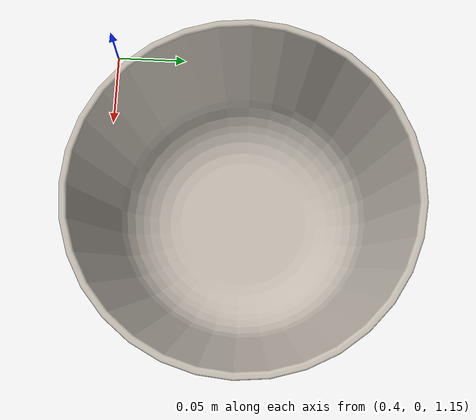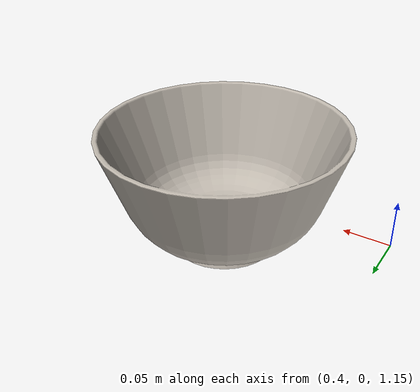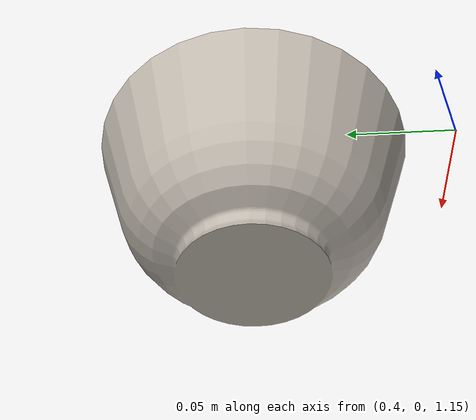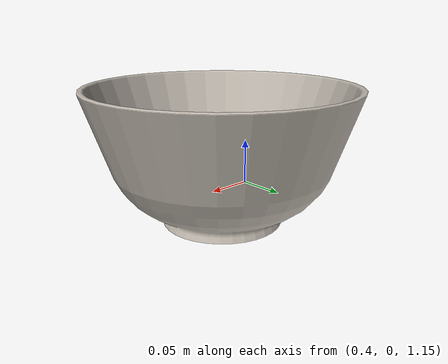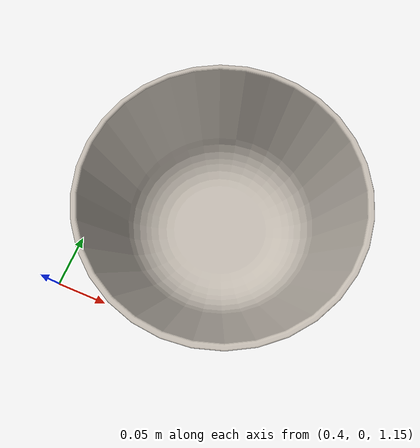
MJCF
<mujoco model="bowl_6">
  <asset>
    <mesh file="../objects/bigym/bowl_12/visual/model_normalized_0.obj" name="bowl_12_model_normalized_0_vis" scale="0.21999999999999994 0.21999999999999994 0.21999999999999994" refquat="1.0 0.0 0.0 0.0"/>
    <mesh file="../objects/bigym/bowl_12/collision/model_normalized_collision_22.obj" name="bowl_12_model_normalized_collision_22._coll" scale="0.21999999999999994 0.21999999999999994 0.21999999999999994" refquat="1.0 0.0 0.0 0.0"/>
    <mesh file="../objects/bigym/bowl_12/collision/model_normalized_collision_23.obj" name="bowl_12_model_normalized_collision_23._coll" scale="0.21999999999999994 0.21999999999999994 0.21999999999999994" refquat="1.0 0.0 0.0 0.0"/>
    <mesh file="../objects/bigym/bowl_12/collision/model_normalized_collision_21.obj" name="bowl_12_model_normalized_collision_21._coll" scale="0.21999999999999994 0.21999999999999994 0.21999999999999994" refquat="1.0 0.0 0.0 0.0"/>
    <mesh file="../objects/bigym/bowl_12/collision/model_normalized_collision_20.obj" name="bowl_12_model_normalized_collision_20._coll" scale="0.21999999999999994 0.21999999999999994 0.21999999999999994" refquat="1.0 0.0 0.0 0.0"/>
    <mesh file="../objects/bigym/bowl_12/collision/model_normalized_collision_24.obj" name="bowl_12_model_normalized_collision_24._coll" scale="0.21999999999999994 0.21999999999999994 0.21999999999999994" refquat="1.0 0.0 0.0 0.0"/>
    <mesh file="../objects/bigym/bowl_12/collision/model_normalized_collision_30.obj" name="bowl_12_model_normalized_collision_30._coll" scale="0.21999999999999994 0.21999999999999994 0.21999999999999994" refquat="1.0 0.0 0.0 0.0"/>
    <mesh file="../objects/bigym/bowl_12/collision/model_normalized_collision_18.obj" name="bowl_12_model_normalized_collision_18._coll" scale="0.21999999999999994 0.21999999999999994 0.21999999999999994" refquat="1.0 0.0 0.0 0.0"/>
    <mesh file="../objects/bigym/bowl_12/collision/model_normalized_collision_19.obj" name="bowl_12_model_normalized_collision_19._coll" scale="0.21999999999999994 0.21999999999999994 0.21999999999999994" refquat="1.0 0.0 0.0 0.0"/>
    <mesh file="../objects/bigym/bowl_12/collision/model_normalized_collision_31.obj" name="bowl_12_model_normalized_collision_31._coll" scale="0.21999999999999994 0.21999999999999994 0.21999999999999994" refquat="1.0 0.0 0.0 0.0"/>
    <mesh file="../objects/bigym/bowl_12/collision/model_normalized_collision_25.obj" name="bowl_12_model_normalized_collision_25._coll" scale="0.21999999999999994 0.21999999999999994 0.21999999999999994" refquat="1.0 0.0 0.0 0.0"/>
    <mesh file="../objects/bigym/bowl_12/collision/model_normalized_collision_27.obj" name="bowl_12_model_normalized_collision_27._coll" scale="0.21999999999999994 0.21999999999999994 0.21999999999999994" refquat="1.0 0.0 0.0 0.0"/>
    <mesh file="../objects/bigym/bowl_12/collision/model_normalized_collision_26.obj" name="bowl_12_model_normalized_collision_26._coll" scale="0.21999999999999994 0.21999999999999994 0.21999999999999994" refquat="1.0 0.0 0.0 0.0"/>
    <mesh file="../objects/bigym/bowl_12/collision/model_normalized_collision_9.obj" name="bowl_12_model_normalized_collision_9._coll" scale="0.21999999999999994 0.21999999999999994 0.21999999999999994" refquat="1.0 0.0 0.0 0.0"/>
    <mesh file="../objects/bigym/bowl_12/collision/model_normalized_collision_8.obj" name="bowl_12_model_normalized_collision_8._coll" scale="0.21999999999999994 0.21999999999999994 0.21999999999999994" refquat="1.0 0.0 0.0 0.0"/>
    <mesh file="../objects/bigym/bowl_12/collision/model_normalized_collision_6.obj" name="bowl_12_model_normalized_collision_6._coll" scale="0.21999999999999994 0.21999999999999994 0.21999999999999994" refquat="1.0 0.0 0.0 0.0"/>
    <mesh file="../objects/bigym/bowl_12/collision/model_normalized_collision_7.obj" name="bowl_12_model_normalized_collision_7._coll" scale="0.21999999999999994 0.21999999999999994 0.21999999999999994" refquat="1.0 0.0 0.0 0.0"/>
    <mesh file="../objects/bigym/bowl_12/collision/model_normalized_collision_5.obj" name="bowl_12_model_normalized_collision_5._coll" scale="0.21999999999999994 0.21999999999999994 0.21999999999999994" refquat="1.0 0.0 0.0 0.0"/>
    <mesh file="../objects/bigym/bowl_12/collision/model_normalized_collision_4.obj" name="bowl_12_model_normalized_collision_4._coll" scale="0.21999999999999994 0.21999999999999994 0.21999999999999994" refquat="1.0 0.0 0.0 0.0"/>
    <mesh file="../objects/bigym/bowl_12/collision/model_normalized_collision_0.obj" name="bowl_12_model_normalized_collision_0._coll" scale="0.21999999999999994 0.21999999999999994 0.21999999999999994" refquat="1.0 0.0 0.0 0.0"/>
    <mesh file="../objects/bigym/bowl_12/collision/model_normalized_collision_1.obj" name="bowl_12_model_normalized_collision_1._coll" scale="0.21999999999999994 0.21999999999999994 0.21999999999999994" refquat="1.0 0.0 0.0 0.0"/>
    <mesh file="../objects/bigym/bowl_12/collision/model_normalized_collision_3.obj" name="bowl_12_model_normalized_collision_3._coll" scale="0.21999999999999994 0.21999999999999994 0.21999999999999994" refquat="1.0 0.0 0.0 0.0"/>
    <mesh file="../objects/bigym/bowl_12/collision/model_normalized_collision_2.obj" name="bowl_12_model_normalized_collision_2._coll" scale="0.21999999999999994 0.21999999999999994 0.21999999999999994" refquat="1.0 0.0 0.0 0.0"/>
    <mesh file="../objects/bigym/bowl_12/collision/model_normalized_collision_17.obj" name="bowl_12_model_normalized_collision_17._coll" scale="0.21999999999999994 0.21999999999999994 0.21999999999999994" refquat="1.0 0.0 0.0 0.0"/>
    <mesh file="../objects/bigym/bowl_12/collision/model_normalized_collision_16.obj" name="bowl_12_model_normalized_collision_16._coll" scale="0.21999999999999994 0.21999999999999994 0.21999999999999994" refquat="1.0 0.0 0.0 0.0"/>
    <mesh file="../objects/bigym/bowl_12/collision/model_normalized_collision_28.obj" name="bowl_12_model_normalized_collision_28._coll" scale="0.21999999999999994 0.21999999999999994 0.21999999999999994" refquat="1.0 0.0 0.0 0.0"/>
    <mesh file="../objects/bigym/bowl_12/collision/model_normalized_collision_14.obj" name="bowl_12_model_normalized_collision_14._coll" scale="0.21999999999999994 0.21999999999999994 0.21999999999999994" refquat="1.0 0.0 0.0 0.0"/>
    <mesh file="../objects/bigym/bowl_12/collision/model_normalized_collision_15.obj" name="bowl_12_model_normalized_collision_15._coll" scale="0.21999999999999994 0.21999999999999994 0.21999999999999994" refquat="1.0 0.0 0.0 0.0"/>
    <mesh file="../objects/bigym/bowl_12/collision/model_normalized_collision_29.obj" name="bowl_12_model_normalized_collision_29._coll" scale="0.21999999999999994 0.21999999999999994 0.21999999999999994" refquat="1.0 0.0 0.0 0.0"/>
    <mesh file="../objects/bigym/bowl_12/collision/model_normalized_collision_11.obj" name="bowl_12_model_normalized_collision_11._coll" scale="0.21999999999999994 0.21999999999999994 0.21999999999999994" refquat="1.0 0.0 0.0 0.0"/>
    <mesh file="../objects/bigym/bowl_12/collision/model_normalized_collision_10.obj" name="bowl_12_model_normalized_collision_10._coll" scale="0.21999999999999994 0.21999999999999994 0.21999999999999994" refquat="1.0 0.0 0.0 0.0"/>
    <mesh file="../objects/bigym/bowl_12/collision/model_normalized_collision_12.obj" name="bowl_12_model_normalized_collision_12._coll" scale="0.21999999999999994 0.21999999999999994 0.21999999999999994" refquat="1.0 0.0 0.0 0.0"/>
    <mesh file="../objects/bigym/bowl_12/collision/model_normalized_collision_13.obj" name="bowl_12_model_normalized_collision_13._coll" scale="0.21999999999999994 0.21999999999999994 0.21999999999999994" refquat="1.0 0.0 0.0 0.0"/>
    <texture type="2d" name="bowl_12_image0" file="../objects/bigym/bowl_12/visual/image0.png"/>
    <material name="ORIENTALCERAMICS-05_Claytan_Rice_Bowl" texture="bowl_12_image0" specular="0.5" shininess="0.057309092"/>
  </asset>

  <default class="main">
    <default class="bowl">
      <default class="bowl_visual">
        <geom type="mesh" contype="0" conaffinity="0" group="2"/>
      </default>
      <default class="bowl_collision">
        <geom type="mesh" group="3" solref="0.004" solimp="0.95 0.98" condim="3"/>
      </default>
    </default>
  </default>

  <worldbody>
      <body name="bowl_12" pos="0.53 0.1 1.23" >
        <freejoint/>
        <geom class="bowl_visual" mesh="bowl_12_model_normalized_0_vis" material="ORIENTALCERAMICS-05_Claytan_Rice_Bowl"  mass="0.2"/>
        <geom class="bowl_collision" mesh="bowl_12_model_normalized_collision_22._coll" rgba="0.8 0.8 0.8 0.0"/>
        <geom class="bowl_collision" mesh="bowl_12_model_normalized_collision_23._coll" rgba="0.8 0.8 0.8 0.0"/>
        <geom class="bowl_collision" mesh="bowl_12_model_normalized_collision_21._coll" rgba="0.8 0.8 0.8 0.0"/>
        <geom class="bowl_collision" mesh="bowl_12_model_normalized_collision_20._coll" rgba="0.8 0.8 0.8 0.0"/>
        <geom class="bowl_collision" mesh="bowl_12_model_normalized_collision_24._coll" rgba="0.8 0.8 0.8 0.0"/>
        <geom class="bowl_collision" mesh="bowl_12_model_normalized_collision_30._coll" rgba="0.8 0.8 0.8 0.0"/>
        <geom class="bowl_collision" mesh="bowl_12_model_normalized_collision_18._coll" rgba="0.8 0.8 0.8 0.0"/>
        <geom class="bowl_collision" mesh="bowl_12_model_normalized_collision_19._coll" rgba="0.8 0.8 0.8 0.0"/>
        <geom class="bowl_collision" mesh="bowl_12_model_normalized_collision_31._coll" rgba="0.8 0.8 0.8 0.0"/>
        <geom class="bowl_collision" mesh="bowl_12_model_normalized_collision_25._coll" rgba="0.8 0.8 0.8 0.0"/>
        <geom class="bowl_collision" mesh="bowl_12_model_normalized_collision_27._coll" rgba="0.8 0.8 0.8 0.0"/>
        <geom class="bowl_collision" mesh="bowl_12_model_normalized_collision_26._coll" rgba="0.8 0.8 0.8 0.0"/>
        <geom class="bowl_collision" mesh="bowl_12_model_normalized_collision_9._coll" rgba="0.8 0.8 0.8 0.0"/>
        <geom class="bowl_collision" mesh="bowl_12_model_normalized_collision_8._coll" rgba="0.8 0.8 0.8 0.0"/>
        <geom class="bowl_collision" mesh="bowl_12_model_normalized_collision_6._coll" rgba="0.8 0.8 0.8 0.0"/>
        <geom class="bowl_collision" mesh="bowl_12_model_normalized_collision_7._coll" rgba="0.8 0.8 0.8 0.0"/>
        <geom class="bowl_collision" mesh="bowl_12_model_normalized_collision_5._coll" rgba="0.8 0.8 0.8 0.0"/>
        <geom class="bowl_collision" mesh="bowl_12_model_normalized_collision_4._coll" rgba="0.8 0.8 0.8 0.0"/>
        <geom class="bowl_collision" mesh="bowl_12_model_normalized_collision_0._coll" rgba="0.8 0.8 0.8 0.0"/>
        <geom class="bowl_collision" mesh="bowl_12_model_normalized_collision_1._coll" rgba="0.8 0.8 0.8 0.0"/>
        <geom class="bowl_collision" mesh="bowl_12_model_normalized_collision_3._coll" rgba="0.8 0.8 0.8 0.0"/>
        <geom class="bowl_collision" mesh="bowl_12_model_normalized_collision_2._coll" rgba="0.8 0.8 0.8 0.0"/>
        <geom class="bowl_collision" mesh="bowl_12_model_normalized_collision_17._coll" rgba="0.8 0.8 0.8 0.0"/>
        <geom class="bowl_collision" mesh="bowl_12_model_normalized_collision_16._coll" rgba="0.8 0.8 0.8 0.0"/>
        <geom class="bowl_collision" mesh="bowl_12_model_normalized_collision_28._coll" rgba="0.8 0.8 0.8 0.0"/>
        <geom class="bowl_collision" mesh="bowl_12_model_normalized_collision_14._coll" rgba="0.8 0.8 0.8 0.0"/>
        <geom class="bowl_collision" mesh="bowl_12_model_normalized_collision_15._coll" rgba="0.8 0.8 0.8 0.0"/>
        <geom class="bowl_collision" mesh="bowl_12_model_normalized_collision_29._coll" rgba="0.8 0.8 0.8 0.0"/>
        <geom class="bowl_collision" mesh="bowl_12_model_normalized_collision_11._coll" rgba="0.8 0.8 0.8 0.0"/>
        <geom class="bowl_collision" mesh="bowl_12_model_normalized_collision_10._coll" rgba="0.8 0.8 0.8 0.0"/>
        <geom class="bowl_collision" mesh="bowl_12_model_normalized_collision_12._coll" rgba="0.8 0.8 0.8 0.0"/>
        <geom class="bowl_collision" mesh="bowl_12_model_normalized_collision_13._coll" rgba="0.8 0.8 0.8 0.0"/>
      </body>
  </worldbody>
</mujoco>
